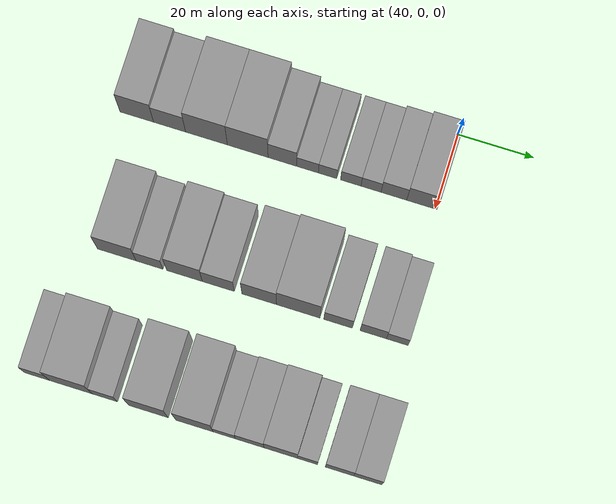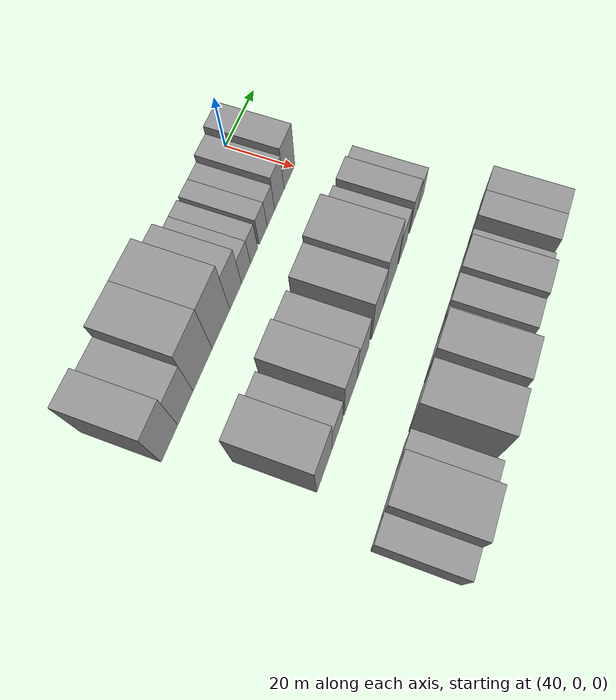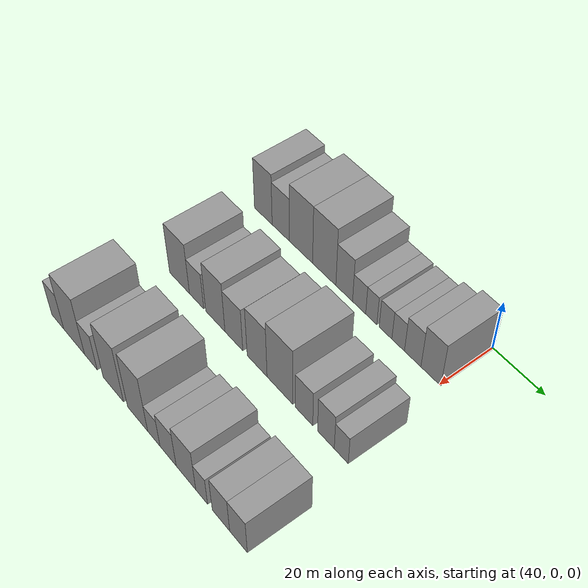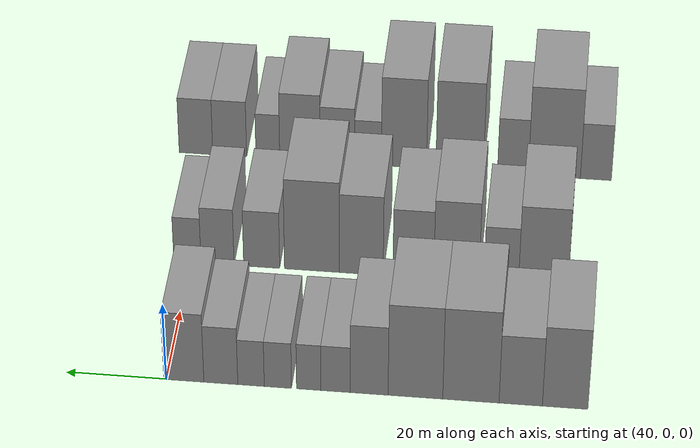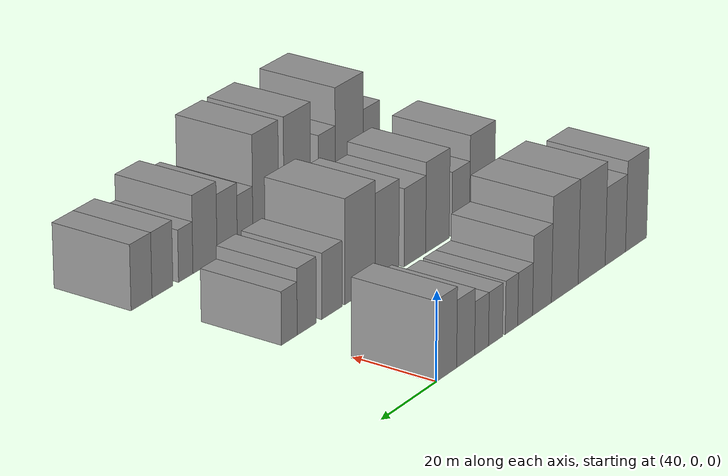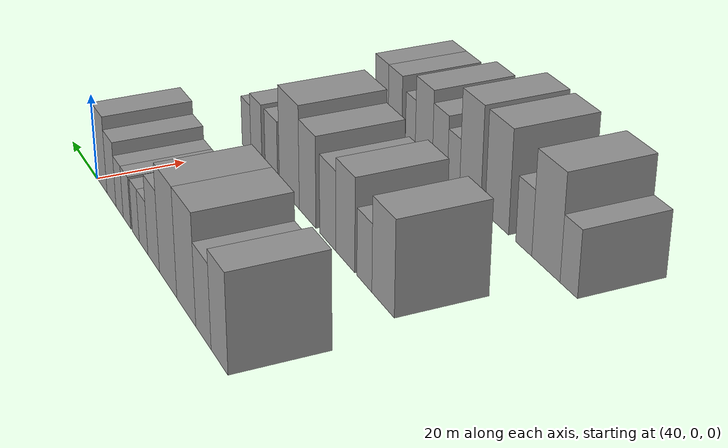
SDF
<sdf version="1.6">
 <world name="default">
  <model name="building_30">
   <static>1</static>
   <pose>50.0000 -78.8094 0 0.000000 0.000000 0.000000</pose>
   <link name="link">
    <pose>0 0 10.50 0 0 0</pose>
    <collision name="collision"><geometry><box><size>20.0000 8.9076 21.0000</size></box></geometry></collision>
    <visual name="visual">
     <cast_shadows>0</cast_shadows>
     <geometry><box><size>20.0000 8.9076 21.0000</size></box></geometry>
     <material>
      <script>
       <uri>model://grey_wall/materials/scripts</uri>
       <uri>model://grey_wall/materials/textures</uri>
       <name>vrc/grey_wall</name>
      </script>
     </material>
    </visual>
   </link>
  </model>
  <model name="building_31">
   <static>1</static>
   <pose>50.0000 -70.1065 0 0.000000 0.000000 0.000000</pose>
   <link name="link">
    <pose>0 0 9.00 0 0 0</pose>
    <collision name="collision"><geometry><box><size>20.0000 8.4981 18.0000</size></box></geometry></collision>
    <visual name="visual">
     <cast_shadows>0</cast_shadows>
     <geometry><box><size>20.0000 8.4981 18.0000</size></box></geometry>
     <material>
      <script>
       <uri>model://grey_wall/materials/scripts</uri>
       <uri>model://grey_wall/materials/textures</uri>
       <name>vrc/grey_wall</name>
      </script>
     </material>
    </visual>
   </link>
  </model>
  <model name="building_32">
   <static>1</static>
   <pose>50.0000 -60.3243 0 0.000000 0.000000 0.000000</pose>
   <link name="link">
    <pose>0 0 12.00 0 0 0</pose>
    <collision name="collision"><geometry><box><size>20.0000 11.0664 24.0000</size></box></geometry></collision>
    <visual name="visual">
     <cast_shadows>0</cast_shadows>
     <geometry><box><size>20.0000 11.0664 24.0000</size></box></geometry>
     <material>
      <script>
       <uri>model://grey_wall/materials/scripts</uri>
       <uri>model://grey_wall/materials/textures</uri>
       <name>vrc/grey_wall</name>
      </script>
     </material>
    </visual>
   </link>
  </model>
  <model name="building_33">
   <static>1</static>
   <pose>50.0000 -49.4066 0 0.000000 0.000000 0.000000</pose>
   <link name="link">
    <pose>0 0 12.00 0 0 0</pose>
    <collision name="collision"><geometry><box><size>20.0000 10.7689 24.0000</size></box></geometry></collision>
    <visual name="visual">
     <cast_shadows>0</cast_shadows>
     <geometry><box><size>20.0000 10.7689 24.0000</size></box></geometry>
     <material>
      <script>
       <uri>model://grey_wall/materials/scripts</uri>
       <uri>model://grey_wall/materials/textures</uri>
       <name>vrc/grey_wall</name>
      </script>
     </material>
    </visual>
   </link>
  </model>
  <model name="building_34">
   <static>1</static>
   <pose>50.0000 -40.2784 0 0.000000 0.000000 0.000000</pose>
   <link name="link">
    <pose>0 0 9.00 0 0 0</pose>
    <collision name="collision"><geometry><box><size>20.0000 7.4877 18.0000</size></box></geometry></collision>
    <visual name="visual">
     <cast_shadows>0</cast_shadows>
     <geometry><box><size>20.0000 7.4877 18.0000</size></box></geometry>
     <material>
      <script>
       <uri>model://grey_wall/materials/scripts</uri>
       <uri>model://grey_wall/materials/textures</uri>
       <name>vrc/grey_wall</name>
      </script>
     </material>
    </visual>
   </link>
  </model>
  <model name="building_35">
   <static>1</static>
   <pose>50.0000 -33.6396 0 0.000000 0.000000 0.000000</pose>
   <link name="link">
    <pose>0 0 6.00 0 0 0</pose>
    <collision name="collision"><geometry><box><size>20.0000 5.7900 12.0000</size></box></geometry></collision>
    <visual name="visual">
     <cast_shadows>0</cast_shadows>
     <geometry><box><size>20.0000 5.7900 12.0000</size></box></geometry>
     <material>
      <script>
       <uri>model://grey_wall/materials/scripts</uri>
       <uri>model://grey_wall/materials/textures</uri>
       <name>vrc/grey_wall</name>
      </script>
     </material>
    </visual>
   </link>
  </model>
  <model name="building_36">
   <static>1</static>
   <pose>50.0000 -28.3302 0 0.000000 0.000000 0.000000</pose>
   <link name="link">
    <pose>0 0 6.00 0 0 0</pose>
    <collision name="collision"><geometry><box><size>20.0000 4.8289 12.0000</size></box></geometry></collision>
    <visual name="visual">
     <cast_shadows>0</cast_shadows>
     <geometry><box><size>20.0000 4.8289 12.0000</size></box></geometry>
     <material>
      <script>
       <uri>model://grey_wall/materials/scripts</uri>
       <uri>model://grey_wall/materials/textures</uri>
       <name>vrc/grey_wall</name>
      </script>
     </material>
    </visual>
   </link>
  </model>
  <model name="building_37">
   <static>1</static>
   <pose>50.0000 -22.2142 0 0.000000 0.000000 0.000000</pose>
   <link name="link">
    <pose>0 0 6.00 0 0 0</pose>
    <collision name="collision"><geometry><box><size>20.0000 5.4031 12.0000</size></box></geometry></collision>
    <visual name="visual">
     <cast_shadows>0</cast_shadows>
     <geometry><box><size>20.0000 5.4031 12.0000</size></box></geometry>
     <material>
      <script>
       <uri>model://grey_wall/materials/scripts</uri>
       <uri>model://grey_wall/materials/textures</uri>
       <name>vrc/grey_wall</name>
      </script>
     </material>
    </visual>
   </link>
  </model>
  <model name="building_38">
   <static>1</static>
   <pose>50.0000 -16.8814 0 0.000000 0.000000 0.000000</pose>
   <link name="link">
    <pose>0 0 6.00 0 0 0</pose>
    <collision name="collision"><geometry><box><size>20.0000 5.2625 12.0000</size></box></geometry></collision>
    <visual name="visual">
     <cast_shadows>0</cast_shadows>
     <geometry><box><size>20.0000 5.2625 12.0000</size></box></geometry>
     <material>
      <script>
       <uri>model://grey_wall/materials/scripts</uri>
       <uri>model://grey_wall/materials/textures</uri>
       <name>vrc/grey_wall</name>
      </script>
     </material>
    </visual>
   </link>
  </model>
  <model name="building_39">
   <static>1</static>
   <pose>50.0000 -10.8758 0 0.000000 0.000000 0.000000</pose>
   <link name="link">
    <pose>0 0 7.50 0 0 0</pose>
    <collision name="collision"><geometry><box><size>20.0000 6.7487 15.0000</size></box></geometry></collision>
    <visual name="visual">
     <cast_shadows>0</cast_shadows>
     <geometry><box><size>20.0000 6.7487 15.0000</size></box></geometry>
     <material>
      <script>
       <uri>model://grey_wall/materials/scripts</uri>
       <uri>model://grey_wall/materials/textures</uri>
       <name>vrc/grey_wall</name>
      </script>
     </material>
    </visual>
   </link>
  </model>
  <model name="building_40">
   <static>1</static>
   <pose>50.0000 -3.5136 0 0.000000 0.000000 0.000000</pose>
   <link name="link">
    <pose>0 0 9.00 0 0 0</pose>
    <collision name="collision"><geometry><box><size>20.0000 7.9757 18.0000</size></box></geometry></collision>
    <visual name="visual">
     <cast_shadows>0</cast_shadows>
     <geometry><box><size>20.0000 7.9757 18.0000</size></box></geometry>
     <material>
      <script>
       <uri>model://grey_wall/materials/scripts</uri>
       <uri>model://grey_wall/materials/textures</uri>
       <name>vrc/grey_wall</name>
      </script>
     </material>
    </visual>
   </link>
  </model>
  <model name="building_114">
   <static>1</static>
   <pose>85.0000 -72.7227 0 0.000000 0.000000 0.000000</pose>
   <link name="link">
    <pose>0 0 10.50 0 0 0</pose>
    <collision name="collision"><geometry><box><size>20.0000 10.1453 21.0000</size></box></geometry></collision>
    <visual name="visual">
     <cast_shadows>0</cast_shadows>
     <geometry><box><size>20.0000 10.1453 21.0000</size></box></geometry>
     <material>
      <script>
       <uri>model://grey_wall/materials/scripts</uri>
       <uri>model://grey_wall/materials/textures</uri>
       <name>vrc/grey_wall</name>
      </script>
     </material>
    </visual>
   </link>
  </model>
  <model name="building_115">
   <static>1</static>
   <pose>85.0000 -64.1096 0 0.000000 0.000000 0.000000</pose>
   <link name="link">
    <pose>0 0 7.50 0 0 0</pose>
    <collision name="collision"><geometry><box><size>20.0000 7.0810 15.0000</size></box></geometry></collision>
    <visual name="visual">
     <cast_shadows>0</cast_shadows>
     <geometry><box><size>20.0000 7.0810 15.0000</size></box></geometry>
     <material>
      <script>
       <uri>model://grey_wall/materials/scripts</uri>
       <uri>model://grey_wall/materials/textures</uri>
       <name>vrc/grey_wall</name>
      </script>
     </material>
    </visual>
   </link>
  </model>
  <model name="building_116">
   <static>1</static>
   <pose>85.0000 -54.9142 0 0.000000 0.000000 0.000000</pose>
   <link name="link">
    <pose>0 0 10.50 0 0 0</pose>
    <collision name="collision"><geometry><box><size>20.0000 9.3097 21.0000</size></box></geometry></collision>
    <visual name="visual">
     <cast_shadows>0</cast_shadows>
     <geometry><box><size>20.0000 9.3097 21.0000</size></box></geometry>
     <material>
      <script>
       <uri>model://grey_wall/materials/scripts</uri>
       <uri>model://grey_wall/materials/textures</uri>
       <name>vrc/grey_wall</name>
      </script>
     </material>
    </visual>
   </link>
  </model>
  <model name="building_117">
   <static>1</static>
   <pose>85.0000 -46.0557 0 0.000000 0.000000 0.000000</pose>
   <link name="link">
    <pose>0 0 9.00 0 0 0</pose>
    <collision name="collision"><geometry><box><size>20.0000 8.4073 18.0000</size></box></geometry></collision>
    <visual name="visual">
     <cast_shadows>0</cast_shadows>
     <geometry><box><size>20.0000 8.4073 18.0000</size></box></geometry>
     <material>
      <script>
       <uri>model://grey_wall/materials/scripts</uri>
       <uri>model://grey_wall/materials/textures</uri>
       <name>vrc/grey_wall</name>
      </script>
     </material>
    </visual>
   </link>
  </model>
  <model name="building_118">
   <static>1</static>
   <pose>85.0000 -35.3311 0 0.000000 0.000000 0.000000</pose>
   <link name="link">
    <pose>0 0 10.50 0 0 0</pose>
    <collision name="collision"><geometry><box><size>20.0000 9.0418 21.0000</size></box></geometry></collision>
    <visual name="visual">
     <cast_shadows>0</cast_shadows>
     <geometry><box><size>20.0000 9.0418 21.0000</size></box></geometry>
     <material>
      <script>
       <uri>model://grey_wall/materials/scripts</uri>
       <uri>model://grey_wall/materials/textures</uri>
       <name>vrc/grey_wall</name>
      </script>
     </material>
    </visual>
   </link>
  </model>
  <model name="building_119">
   <static>1</static>
   <pose>85.0000 -25.1332 0 0.000000 0.000000 0.000000</pose>
   <link name="link">
    <pose>0 0 12.00 0 0 0</pose>
    <collision name="collision"><geometry><box><size>20.0000 11.3540 24.0000</size></box></geometry></collision>
    <visual name="visual">
     <cast_shadows>0</cast_shadows>
     <geometry><box><size>20.0000 11.3540 24.0000</size></box></geometry>
     <material>
      <script>
       <uri>model://grey_wall/materials/scripts</uri>
       <uri>model://grey_wall/materials/textures</uri>
       <name>vrc/grey_wall</name>
      </script>
     </material>
    </visual>
   </link>
  </model>
  <model name="building_120">
   <static>1</static>
   <pose>85.0000 -14.7222 0 0.000000 0.000000 0.000000</pose>
   <link name="link">
    <pose>0 0 7.50 0 0 0</pose>
    <collision name="collision"><geometry><box><size>20.0000 7.4680 15.0000</size></box></geometry></collision>
    <visual name="visual">
     <cast_shadows>0</cast_shadows>
     <geometry><box><size>20.0000 7.4680 15.0000</size></box></geometry>
     <material>
      <script>
       <uri>model://grey_wall/materials/scripts</uri>
       <uri>model://grey_wall/materials/textures</uri>
       <name>vrc/grey_wall</name>
      </script>
     </material>
    </visual>
   </link>
  </model>
  <model name="building_121">
   <static>1</static>
   <pose>85.0000 -5.5475 0 0.000000 0.000000 0.000000</pose>
   <link name="link">
    <pose>0 0 7.50 0 0 0</pose>
    <collision name="collision"><geometry><box><size>20.0000 6.8814 15.0000</size></box></geometry></collision>
    <visual name="visual">
     <cast_shadows>0</cast_shadows>
     <geometry><box><size>20.0000 6.8814 15.0000</size></box></geometry>
     <material>
      <script>
       <uri>model://grey_wall/materials/scripts</uri>
       <uri>model://grey_wall/materials/textures</uri>
       <name>vrc/grey_wall</name>
      </script>
     </material>
    </visual>
   </link>
  </model>
  <model name="building_122">
   <static>1</static>
   <pose>85.0000 0.7151 0 0.000000 0.000000 0.000000</pose>
   <link name="link">
    <pose>0 0 6.00 0 0 0</pose>
    <collision name="collision"><geometry><box><size>20.0000 5.6439 12.0000</size></box></geometry></collision>
    <visual name="visual">
     <cast_shadows>0</cast_shadows>
     <geometry><box><size>20.0000 5.6439 12.0000</size></box></geometry>
     <material>
      <script>
       <uri>model://grey_wall/materials/scripts</uri>
       <uri>model://grey_wall/materials/textures</uri>
       <name>vrc/grey_wall</name>
      </script>
     </material>
    </visual>
   </link>
  </model>
  <model name="building_199">
   <static>1</static>
   <pose>120.0000 -82.1262 0 0.000000 0.000000 0.000000</pose>
   <link name="link">
    <pose>0 0 7.50 0 0 0</pose>
    <collision name="collision"><geometry><box><size>20.0000 6.5995 15.0000</size></box></geometry></collision>
    <visual name="visual">
     <cast_shadows>0</cast_shadows>
     <geometry><box><size>20.0000 6.5995 15.0000</size></box></geometry>
     <material>
      <script>
       <uri>model://grey_wall/materials/scripts</uri>
       <uri>model://grey_wall/materials/textures</uri>
       <name>vrc/grey_wall</name>
      </script>
     </material>
    </visual>
   </link>
  </model>
  <model name="building_200">
   <static>1</static>
   <pose>120.0000 -73.2763 0 0.000000 0.000000 0.000000</pose>
   <link name="link">
    <pose>0 0 12.00 0 0 0</pose>
    <collision name="collision"><geometry><box><size>20.0000 11.1002 24.0000</size></box></geometry></collision>
    <visual name="visual">
     <cast_shadows>0</cast_shadows>
     <geometry><box><size>20.0000 11.1002 24.0000</size></box></geometry>
     <material>
      <script>
       <uri>model://grey_wall/materials/scripts</uri>
       <uri>model://grey_wall/materials/textures</uri>
       <name>vrc/grey_wall</name>
      </script>
     </material>
    </visual>
   </link>
  </model>
  <model name="building_201">
   <static>1</static>
   <pose>120.0000 -64.4356 0 0.000000 0.000000 0.000000</pose>
   <link name="link">
    <pose>0 0 7.50 0 0 0</pose>
    <collision name="collision"><geometry><box><size>20.0000 6.5812 15.0000</size></box></geometry></collision>
    <visual name="visual">
     <cast_shadows>0</cast_shadows>
     <geometry><box><size>20.0000 6.5812 15.0000</size></box></geometry>
     <material>
      <script>
       <uri>model://grey_wall/materials/scripts</uri>
       <uri>model://grey_wall/materials/textures</uri>
       <name>vrc/grey_wall</name>
      </script>
     </material>
    </visual>
   </link>
  </model>
  <model name="building_202">
   <static>1</static>
   <pose>120.0000 -53.0416 0 0.000000 0.000000 0.000000</pose>
   <link name="link">
    <pose>0 0 12.00 0 0 0</pose>
    <collision name="collision"><geometry><box><size>20.0000 10.2068 24.0000</size></box></geometry></collision>
    <visual name="visual">
     <cast_shadows>0</cast_shadows>
     <geometry><box><size>20.0000 10.2068 24.0000</size></box></geometry>
     <material>
      <script>
       <uri>model://grey_wall/materials/scripts</uri>
       <uri>model://grey_wall/materials/textures</uri>
       <name>vrc/grey_wall</name>
      </script>
     </material>
    </visual>
   </link>
  </model>
  <model name="building_203">
   <static>1</static>
   <pose>120.0000 -41.0968 0 0.000000 0.000000 0.000000</pose>
   <link name="link">
    <pose>0 0 12.00 0 0 0</pose>
    <collision name="collision"><geometry><box><size>20.0000 9.6828 24.0000</size></box></geometry></collision>
    <visual name="visual">
     <cast_shadows>0</cast_shadows>
     <geometry><box><size>20.0000 9.6828 24.0000</size></box></geometry>
     <material>
      <script>
       <uri>model://grey_wall/materials/scripts</uri>
       <uri>model://grey_wall/materials/textures</uri>
       <name>vrc/grey_wall</name>
      </script>
     </material>
    </visual>
   </link>
  </model>
  <model name="building_204">
   <static>1</static>
   <pose>120.0000 -33.3635 0 0.000000 0.000000 0.000000</pose>
   <link name="link">
    <pose>0 0 6.00 0 0 0</pose>
    <collision name="collision"><geometry><box><size>20.0000 5.7838 12.0000</size></box></geometry></collision>
    <visual name="visual">
     <cast_shadows>0</cast_shadows>
     <geometry><box><size>20.0000 5.7838 12.0000</size></box></geometry>
     <material>
      <script>
       <uri>model://grey_wall/materials/scripts</uri>
       <uri>model://grey_wall/materials/textures</uri>
       <name>vrc/grey_wall</name>
      </script>
     </material>
    </visual>
   </link>
  </model>
  <model name="building_205">
   <static>1</static>
   <pose>120.0000 -26.7649 0 0.000000 0.000000 0.000000</pose>
   <link name="link">
    <pose>0 0 7.50 0 0 0</pose>
    <collision name="collision"><geometry><box><size>20.0000 7.4132 15.0000</size></box></geometry></collision>
    <visual name="visual">
     <cast_shadows>0</cast_shadows>
     <geometry><box><size>20.0000 7.4132 15.0000</size></box></geometry>
     <material>
      <script>
       <uri>model://grey_wall/materials/scripts</uri>
       <uri>model://grey_wall/materials/textures</uri>
       <name>vrc/grey_wall</name>
      </script>
     </material>
    </visual>
   </link>
  </model>
  <model name="building_206">
   <static>1</static>
   <pose>120.0000 -18.7022 0 0.000000 0.000000 0.000000</pose>
   <link name="link">
    <pose>0 0 9.00 0 0 0</pose>
    <collision name="collision"><geometry><box><size>20.0000 8.7123 18.0000</size></box></geometry></collision>
    <visual name="visual">
     <cast_shadows>0</cast_shadows>
     <geometry><box><size>20.0000 8.7123 18.0000</size></box></geometry>
     <material>
      <script>
       <uri>model://grey_wall/materials/scripts</uri>
       <uri>model://grey_wall/materials/textures</uri>
       <name>vrc/grey_wall</name>
      </script>
     </material>
    </visual>
   </link>
  </model>
  <model name="building_207">
   <static>1</static>
   <pose>120.0000 -11.7746 0 0.000000 0.000000 0.000000</pose>
   <link name="link">
    <pose>0 0 6.00 0 0 0</pose>
    <collision name="collision"><geometry><box><size>20.0000 5.1428 12.0000</size></box></geometry></collision>
    <visual name="visual">
     <cast_shadows>0</cast_shadows>
     <geometry><box><size>20.0000 5.1428 12.0000</size></box></geometry>
     <material>
      <script>
       <uri>model://grey_wall/materials/scripts</uri>
       <uri>model://grey_wall/materials/textures</uri>
       <name>vrc/grey_wall</name>
      </script>
     </material>
    </visual>
   </link>
  </model>
  <model name="building_208">
   <static>1</static>
   <pose>120.0000 -3.5296 0 0.000000 0.000000 0.000000</pose>
   <link name="link">
    <pose>0 0 7.50 0 0 0</pose>
    <collision name="collision"><geometry><box><size>20.0000 7.3472 15.0000</size></box></geometry></collision>
    <visual name="visual">
     <cast_shadows>0</cast_shadows>
     <geometry><box><size>20.0000 7.3472 15.0000</size></box></geometry>
     <material>
      <script>
       <uri>model://grey_wall/materials/scripts</uri>
       <uri>model://grey_wall/materials/textures</uri>
       <name>vrc/grey_wall</name>
      </script>
     </material>
    </visual>
   </link>
  </model>
  <model name="building_209">
   <static>1</static>
   <pose>120.0000 3.7809 0 0.000000 0.000000 0.000000</pose>
   <link name="link">
    <pose>0 0 7.50 0 0 0</pose>
    <collision name="collision"><geometry><box><size>20.0000 7.2739 15.0000</size></box></geometry></collision>
    <visual name="visual">
     <cast_shadows>0</cast_shadows>
     <geometry><box><size>20.0000 7.2739 15.0000</size></box></geometry>
     <material>
      <script>
       <uri>model://grey_wall/materials/scripts</uri>
       <uri>model://grey_wall/materials/textures</uri>
       <name>vrc/grey_wall</name>
      </script>
     </material>
    </visual>
   </link>
  </model>
 </world>
</sdf>
